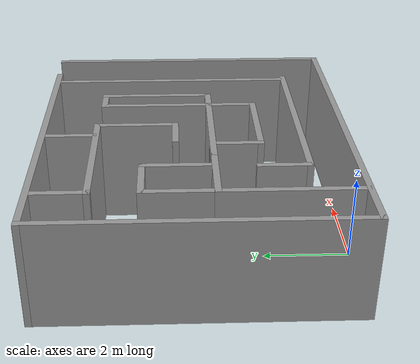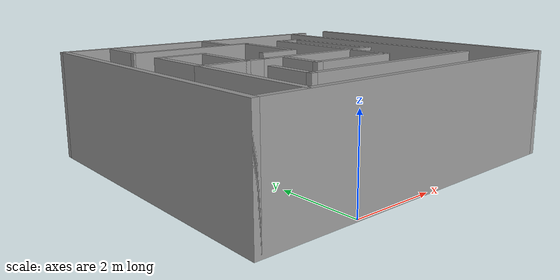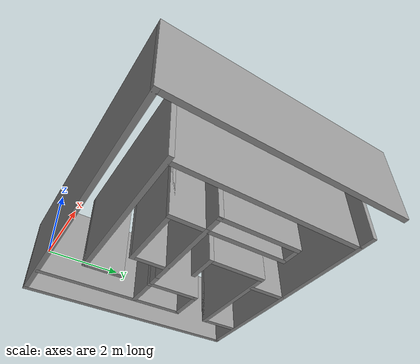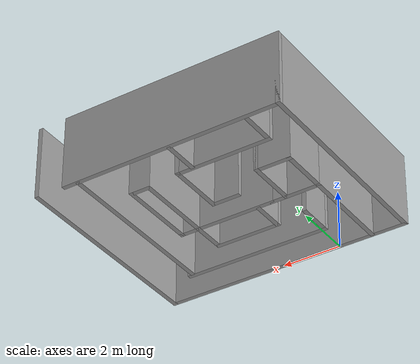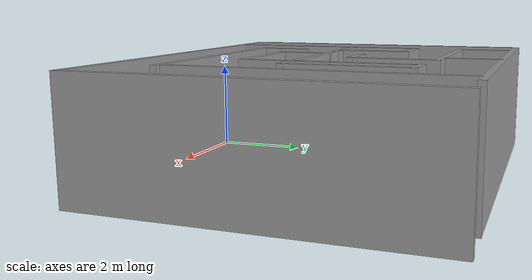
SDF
<?xml version='1.0'?>
<sdf version='1.7'>
  <model name='laberinto4'>
    <pose>1.92022 3.55223 0 0 -0 0</pose>
    <link name='Wall_10'>
      <collision name='Wall_10_Collision'>
        <geometry>
          <box>
            <size>7.25 0.15 2.5</size>
          </box>
        </geometry>
        <pose>0 0 1.25 0 -0 0</pose>
      </collision>
      <visual name='Wall_10_Visual'>
        <pose>0 0 1.25 0 -0 0</pose>
        <geometry>
          <box>
            <size>7.25 0.15 2.5</size>
          </box>
        </geometry>
        <material>
          <script>
            <uri>file://media/materials/scripts/gazebo.material</uri>
            <name>Gazebo/Grey</name>
          </script>
          <ambient>1 1 1 1</ambient>
        </material>
        <meta>
          <layer>0</layer>
        </meta>
      </visual>
      <pose>-4.175 0 0 0 -0 -1.5708</pose>
    </link>
    <link name='Wall_11'>
      <collision name='Wall_11_Collision'>
        <geometry>
          <box>
            <size>8.5 0.15 2.5</size>
          </box>
        </geometry>
        <pose>0 0 1.25 0 -0 0</pose>
      </collision>
      <visual name='Wall_11_Visual'>
        <pose>0 0 1.25 0 -0 0</pose>
        <geometry>
          <box>
            <size>8.5 0.15 2.5</size>
          </box>
        </geometry>
        <material>
          <script>
            <uri>file://media/materials/scripts/gazebo.material</uri>
            <name>Gazebo/Grey</name>
          </script>
          <ambient>1 1 1 1</ambient>
        </material>
        <meta>
          <layer>0</layer>
        </meta>
      </visual>
      <pose>0 -3.55 0 0 -0 0</pose>
    </link>
    <link name='Wall_12'>
      <collision name='Wall_12_Collision'>
        <geometry>
          <box>
            <size>7.25 0.15 2.5</size>
          </box>
        </geometry>
        <pose>0 0 1.25 0 -0 0</pose>
      </collision>
      <visual name='Wall_12_Visual'>
        <pose>0 0 1.25 0 -0 0</pose>
        <geometry>
          <box>
            <size>7.25 0.15 2.5</size>
          </box>
        </geometry>
        <material>
          <script>
            <uri>file://media/materials/scripts/gazebo.material</uri>
            <name>Gazebo/Grey</name>
          </script>
          <ambient>1 1 1 1</ambient>
        </material>
        <meta>
          <layer>0</layer>
        </meta>
      </visual>
      <pose>4.175 0 0 0 -0 1.5708</pose>
    </link>
    <link name='Wall_14'>
      <collision name='Wall_14_Collision'>
        <geometry>
          <box>
            <size>7.5 0.15 2.5</size>
          </box>
        </geometry>
        <pose>0 0 1.25 0 -0 0</pose>
      </collision>
      <visual name='Wall_14_Visual'>
        <pose>0 0 1.25 0 -0 0</pose>
        <geometry>
          <box>
            <size>7.5 0.15 2.5</size>
          </box>
        </geometry>
        <material>
          <script>
            <uri>file://media/materials/scripts/gazebo.material</uri>
            <name>Gazebo/Grey</name>
          </script>
          <ambient>1 1 1 1</ambient>
        </material>
        <meta>
          <layer>0</layer>
        </meta>
      </visual>
      <pose>-0.5 3.55 0 0 -0 0</pose>
    </link>
    <link name='Wall_16'>
      <collision name='Wall_16_Collision'>
        <geometry>
          <box>
            <size>3.25 0.15 2.5</size>
          </box>
        </geometry>
        <pose>0 0 1.25 0 -0 0</pose>
      </collision>
      <visual name='Wall_16_Visual'>
        <pose>0 0 1.25 0 -0 0</pose>
        <geometry>
          <box>
            <size>3.25 0.15 2.5</size>
          </box>
        </geometry>
        <material>
          <script>
            <uri>file://media/materials/scripts/gazebo.material</uri>
            <name>Gazebo/Grey</name>
          </script>
          <ambient>1 1 1 1</ambient>
        </material>
        <meta>
          <layer>0</layer>
        </meta>
      </visual>
      <pose>-3.05779 -1.94905 0 0 -0 1.5708</pose>
    </link>
    <link name='Wall_19'>
      <collision name='Wall_19_Collision'>
        <geometry>
          <box>
            <size>1.75 0.15 2.5</size>
          </box>
        </geometry>
        <pose>0 0 1.25 0 -0 0</pose>
      </collision>
      <visual name='Wall_19_Visual'>
        <pose>0 0 1.25 0 -0 0</pose>
        <geometry>
          <box>
            <size>1.75 0.15 2.5</size>
          </box>
        </geometry>
        <material>
          <script>
            <uri>file://media/materials/scripts/gazebo.material</uri>
            <name>Gazebo/Grey</name>
          </script>
          <ambient>1 1 1 1</ambient>
        </material>
        <meta>
          <layer>0</layer>
        </meta>
      </visual>
      <pose>-2.25779 -0.399053 0 0 -0 0</pose>
    </link>
    <link name='Wall_27'>
      <collision name='Wall_27_Collision'>
        <geometry>
          <box>
            <size>6 0.15 2.5</size>
          </box>
        </geometry>
        <pose>0 0 1.25 0 -0 0</pose>
      </collision>
      <visual name='Wall_27_Visual'>
        <pose>0 0 1.25 0 -0 0</pose>
        <geometry>
          <box>
            <size>6 0.15 2.5</size>
          </box>
        </geometry>
        <material>
          <script>
            <uri>file://media/materials/scripts/gazebo.material</uri>
            <name>Gazebo/Grey</name>
          </script>
          <ambient>1 1 1 1</ambient>
        </material>
        <meta>
          <layer>0</layer>
        </meta>
      </visual>
      <pose>2.71445 0.5718 0 0 -0 -1.5708</pose>
    </link>
    <link name='Wall_29'>
      <collision name='Wall_29_Collision'>
        <geometry>
          <box>
            <size>1.25 0.15 2.5</size>
          </box>
        </geometry>
        <pose>0 0 1.25 0 -0 0</pose>
      </collision>
      <visual name='Wall_29_Visual'>
        <pose>0 0 1.25 0 -0 0</pose>
        <geometry>
          <box>
            <size>1.25 0.15 2.5</size>
          </box>
        </geometry>
        <material>
          <script>
            <uri>file://media/materials/scripts/gazebo.material</uri>
            <name>Gazebo/Grey</name>
          </script>
          <ambient>1 1 1 1</ambient>
        </material>
        <meta>
          <layer>0</layer>
        </meta>
      </visual>
      <pose>-2.02038 -1.92104 0 0 -0 -1.5708</pose>
    </link>
    <link name='Wall_33'>
      <collision name='Wall_33_Collision'>
        <geometry>
          <box>
            <size>5 0.15 2.5</size>
          </box>
        </geometry>
        <pose>0 0 1.25 0 -0 0</pose>
      </collision>
      <visual name='Wall_33_Visual'>
        <pose>0 0 1.25 0 -0 0</pose>
        <geometry>
          <box>
            <size>5 0.15 2.5</size>
          </box>
        </geometry>
        <material>
          <script>
            <uri>file://media/materials/scripts/gazebo.material</uri>
            <name>Gazebo/Grey</name>
          </script>
          <ambient>1 1 1 1</ambient>
        </material>
        <meta>
          <layer>0</layer>
        </meta>
      </visual>
      <pose>0.404616 -2.47104 0 0 -0 0</pose>
    </link>
    <link name='Wall_38'>
      <collision name='Wall_38_Collision'>
        <geometry>
          <box>
            <size>2 0.15 2.5</size>
          </box>
        </geometry>
        <pose>0 0 1.25 0 -0 0</pose>
      </collision>
      <visual name='Wall_38_Visual'>
        <pose>0 0 1.25 0 -0 0</pose>
        <geometry>
          <box>
            <size>2 0.15 2.5</size>
          </box>
        </geometry>
        <material>
          <script>
            <uri>file://media/materials/scripts/gazebo.material</uri>
            <name>Gazebo/Grey</name>
          </script>
          <ambient>1 1 1 1</ambient>
        </material>
        <meta>
          <layer>0</layer>
        </meta>
      </visual>
      <pose>0.042208 1.37595 0 0 -0 -1.5708</pose>
    </link>
    <link name='Wall_43'>
      <collision name='Wall_43_Collision'>
        <geometry>
          <box>
            <size>2.75 0.15 2.5</size>
          </box>
        </geometry>
        <pose>0 0 1.25 0 -0 0</pose>
      </collision>
      <visual name='Wall_43_Visual'>
        <pose>0 0 1.25 0 -0 0</pose>
        <geometry>
          <box>
            <size>2.75 0.15 2.5</size>
          </box>
        </geometry>
        <material>
          <script>
            <uri>file://media/materials/scripts/gazebo.material</uri>
            <name>Gazebo/Grey</name>
          </script>
          <ambient>1 1 1 1</ambient>
        </material>
        <meta>
          <layer>0</layer>
        </meta>
      </visual>
      <pose>-0.157792 -0.399053 0 0 -0 0</pose>
    </link>
    <link name='Wall_45'>
      <collision name='Wall_45_Collision'>
        <geometry>
          <box>
            <size>1.75 0.15 2.5</size>
          </box>
        </geometry>
        <pose>0 0 1.25 0 -0 0</pose>
      </collision>
      <visual name='Wall_45_Visual'>
        <pose>0 0 1.25 0 -0 0</pose>
        <geometry>
          <box>
            <size>1.75 0.15 2.5</size>
          </box>
        </geometry>
        <material>
          <script>
            <uri>file://media/materials/scripts/gazebo.material</uri>
            <name>Gazebo/Grey</name>
          </script>
          <ambient>1 1 1 1</ambient>
        </material>
        <meta>
          <layer>0</layer>
        </meta>
      </visual>
      <pose>-3.05779 0.400947 0 0 -0 1.5708</pose>
    </link>
    <link name='Wall_46'>
      <collision name='Wall_46_Collision'>
        <geometry>
          <box>
            <size>1.25 0.15 2.5</size>
          </box>
        </geometry>
        <pose>0 0 1.25 0 -0 0</pose>
      </collision>
      <visual name='Wall_46_Visual'>
        <pose>0 0 1.25 0 -0 0</pose>
        <geometry>
          <box>
            <size>1.25 0.15 2.5</size>
          </box>
        </geometry>
        <material>
          <script>
            <uri>file://media/materials/scripts/gazebo.material</uri>
            <name>Gazebo/Grey</name>
          </script>
          <ambient>1 1 1 1</ambient>
        </material>
        <meta>
          <layer>0</layer>
        </meta>
      </visual>
      <pose>-2.50779 1.20095 0 0 -0 0</pose>
    </link>
    <link name='Wall_47'>
      <collision name='Wall_47_Collision'>
        <geometry>
          <box>
            <size>1.75 0.15 2.5</size>
          </box>
        </geometry>
        <pose>0 0 1.25 0 -0 0</pose>
      </collision>
      <visual name='Wall_47_Visual'>
        <pose>0 0 1.25 0 -0 0</pose>
        <geometry>
          <box>
            <size>1.75 0.15 2.5</size>
          </box>
        </geometry>
        <material>
          <script>
            <uri>file://media/materials/scripts/gazebo.material</uri>
            <name>Gazebo/Grey</name>
          </script>
          <ambient>1 1 1 1</ambient>
        </material>
        <meta>
          <layer>0</layer>
        </meta>
      </visual>
      <pose>-1.95779 0.400947 0 0 -0 -1.5708</pose>
    </link>
    <link name='Wall_49'>
      <collision name='Wall_49_Collision'>
        <geometry>
          <box>
            <size>1 0.15 2.5</size>
          </box>
        </geometry>
        <pose>0 0 1.25 0 -0 0</pose>
      </collision>
      <visual name='Wall_49_Visual'>
        <pose>0 0 1.25 0 -0 0</pose>
        <geometry>
          <box>
            <size>1 0.15 2.5</size>
          </box>
        </geometry>
        <material>
          <script>
            <uri>file://media/materials/scripts/gazebo.material</uri>
            <name>Gazebo/Grey</name>
          </script>
          <ambient>1 1 1 1</ambient>
        </material>
        <meta>
          <layer>0</layer>
        </meta>
      </visual>
      <pose>-0.382792 0.450947 0 0 -0 3.14159</pose>
    </link>
    <link name='Wall_53'>
      <collision name='Wall_53_Collision'>
        <geometry>
          <box>
            <size>3.25 0.15 2.5</size>
          </box>
        </geometry>
        <pose>0 0 1.25 0 -0 0</pose>
      </collision>
      <visual name='Wall_53_Visual'>
        <pose>0 0 1.25 0 -0 0</pose>
        <geometry>
          <box>
            <size>3.25 0.15 2.5</size>
          </box>
        </geometry>
        <material>
          <script>
            <uri>file://media/materials/scripts/gazebo.material</uri>
            <name>Gazebo/Grey</name>
          </script>
          <ambient>1 1 1 1</ambient>
        </material>
        <meta>
          <layer>0</layer>
        </meta>
      </visual>
      <pose>-1.50779 2.30095 0 0 -0 0</pose>
    </link>
    <link name='Wall_58'>
      <collision name='Wall_58_Collision'>
        <geometry>
          <box>
            <size>0.75 0.15 2.5</size>
          </box>
        </geometry>
        <pose>0 0 1.25 0 -0 0</pose>
      </collision>
      <visual name='Wall_58_Visual'>
        <pose>0 0 1.25 0 -0 0</pose>
        <geometry>
          <box>
            <size>0.75 0.15 2.5</size>
          </box>
        </geometry>
        <material>
          <script>
            <uri>file://media/materials/scripts/gazebo.material</uri>
            <name>Gazebo/Grey</name>
          </script>
          <ambient>1 1 1 1</ambient>
        </material>
        <meta>
          <layer>0</layer>
        </meta>
      </visual>
      <pose>1.44221 -0.399053 0 0 -0 3.14159</pose>
    </link>
    <link name='Wall_61'>
      <collision name='Wall_61_Collision'>
        <geometry>
          <box>
            <size>1.25 0.15 2.5</size>
          </box>
        </geometry>
        <pose>0 0 1.25 0 -0 0</pose>
      </collision>
      <visual name='Wall_61_Visual'>
        <pose>0 0 1.25 0 -0 0</pose>
        <geometry>
          <box>
            <size>1.25 0.15 2.5</size>
          </box>
        </geometry>
        <material>
          <script>
            <uri>file://media/materials/scripts/gazebo.material</uri>
            <name>Gazebo/Grey</name>
          </script>
          <ambient>1 1 1 1</ambient>
        </material>
        <meta>
          <layer>0</layer>
        </meta>
      </visual>
      <pose>-0.477572 2.9202 0 0 -0 -1.5708</pose>
    </link>
    <link name='Wall_63'>
      <collision name='Wall_63_Collision'>
        <geometry>
          <box>
            <size>1.25 0.15 2.5</size>
          </box>
        </geometry>
        <pose>0 0 1.25 0 -0 0</pose>
      </collision>
      <visual name='Wall_63_Visual'>
        <pose>0 0 1.25 0 -0 0</pose>
        <geometry>
          <box>
            <size>1.25 0.15 2.5</size>
          </box>
        </geometry>
        <material>
          <script>
            <uri>file://media/materials/scripts/gazebo.material</uri>
            <name>Gazebo/Grey</name>
          </script>
          <ambient>1 1 1 1</ambient>
        </material>
        <meta>
          <layer>0</layer>
        </meta>
      </visual>
      <pose>1.14221 -0.949053 0 0 -0 -1.5708</pose>
    </link>
    <link name='Wall_64'>
      <collision name='Wall_64_Collision'>
        <geometry>
          <box>
            <size>2.25 0.15 2.5</size>
          </box>
        </geometry>
        <pose>0 0 1.25 0 -0 0</pose>
      </collision>
      <visual name='Wall_64_Visual'>
        <pose>0 0 1.25 0 -0 0</pose>
        <geometry>
          <box>
            <size>2.25 0.15 2.5</size>
          </box>
        </geometry>
        <material>
          <script>
            <uri>file://media/materials/scripts/gazebo.material</uri>
            <name>Gazebo/Grey</name>
          </script>
          <ambient>1 1 1 1</ambient>
        </material>
        <meta>
          <layer>0</layer>
        </meta>
      </visual>
      <pose>0.092208 -1.49905 0 0 -0 3.14159</pose>
    </link>
    <link name='Wall_65'>
      <collision name='Wall_65_Collision'>
        <geometry>
          <box>
            <size>1.25 0.15 2.5</size>
          </box>
        </geometry>
        <pose>0 0 1.25 0 -0 0</pose>
      </collision>
      <visual name='Wall_65_Visual'>
        <pose>0 0 1.25 0 -0 0</pose>
        <geometry>
          <box>
            <size>1.25 0.15 2.5</size>
          </box>
        </geometry>
        <material>
          <script>
            <uri>file://media/materials/scripts/gazebo.material</uri>
            <name>Gazebo/Grey</name>
          </script>
          <ambient>1 1 1 1</ambient>
        </material>
        <meta>
          <layer>0</layer>
        </meta>
      </visual>
      <pose>-0.957792 -0.949053 0 0 -0 1.5708</pose>
    </link>
    <link name='Wall_68'>
      <collision name='Wall_68_Collision'>
        <geometry>
          <box>
            <size>1.25 0.15 2.5</size>
          </box>
        </geometry>
        <pose>0 0 1.25 0 -0 0</pose>
      </collision>
      <visual name='Wall_68_Visual'>
        <pose>0 0 1.25 0 -0 0</pose>
        <geometry>
          <box>
            <size>1.25 0.15 2.5</size>
          </box>
        </geometry>
        <material>
          <script>
            <uri>file://media/materials/scripts/gazebo.material</uri>
            <name>Gazebo/Grey</name>
          </script>
          <ambient>1 1 1 1</ambient>
        </material>
        <meta>
          <layer>0</layer>
        </meta>
      </visual>
      <pose>-3.05779 2.85095 0 0 -0 1.5708</pose>
    </link>
    <link name='Wall_70'>
      <collision name='Wall_70_Collision'>
        <geometry>
          <box>
            <size>2.75 0.15 2.5</size>
          </box>
        </geometry>
        <pose>0 0 1.25 0 -0 0</pose>
      </collision>
      <visual name='Wall_70_Visual'>
        <pose>0 0 1.25 0 -0 0</pose>
        <geometry>
          <box>
            <size>2.75 0.15 2.5</size>
          </box>
        </geometry>
        <material>
          <script>
            <uri>file://media/materials/scripts/gazebo.material</uri>
            <name>Gazebo/Grey</name>
          </script>
          <ambient>1 1 1 1</ambient>
        </material>
        <meta>
          <layer>0</layer>
        </meta>
      </visual>
      <pose>1.14221 0.900947 0 0 -0 1.5708</pose>
    </link>
    <link name='Wall_71'>
      <collision name='Wall_71_Collision'>
        <geometry>
          <box>
            <size>0.75 0.15 2.5</size>
          </box>
        </geometry>
        <pose>0 0 1.25 0 -0 0</pose>
      </collision>
      <visual name='Wall_71_Visual'>
        <pose>0 0 1.25 0 -0 0</pose>
        <geometry>
          <box>
            <size>0.75 0.15 2.5</size>
          </box>
        </geometry>
        <material>
          <script>
            <uri>file://media/materials/scripts/gazebo.material</uri>
            <name>Gazebo/Grey</name>
          </script>
          <ambient>1 1 1 1</ambient>
        </material>
        <meta>
          <layer>0</layer>
        </meta>
      </visual>
      <pose>1.44221 2.20095 0 0 -0 0</pose>
    </link>
    <link name='Wall_72'>
      <collision name='Wall_72_Collision'>
        <geometry>
          <box>
            <size>2.75 0.15 2.5</size>
          </box>
        </geometry>
        <pose>0 0 1.25 0 -0 0</pose>
      </collision>
      <visual name='Wall_72_Visual'>
        <pose>0 0 1.25 0 -0 0</pose>
        <geometry>
          <box>
            <size>2.75 0.15 2.5</size>
          </box>
        </geometry>
        <material>
          <script>
            <uri>file://media/materials/scripts/gazebo.material</uri>
            <name>Gazebo/Grey</name>
          </script>
          <ambient>1 1 1 1</ambient>
        </material>
        <meta>
          <layer>0</layer>
        </meta>
      </visual>
      <pose>1.74221 0.900947 0 0 -0 -1.5708</pose>
    </link>
    <static>1</static>
  </model>
</sdf>
